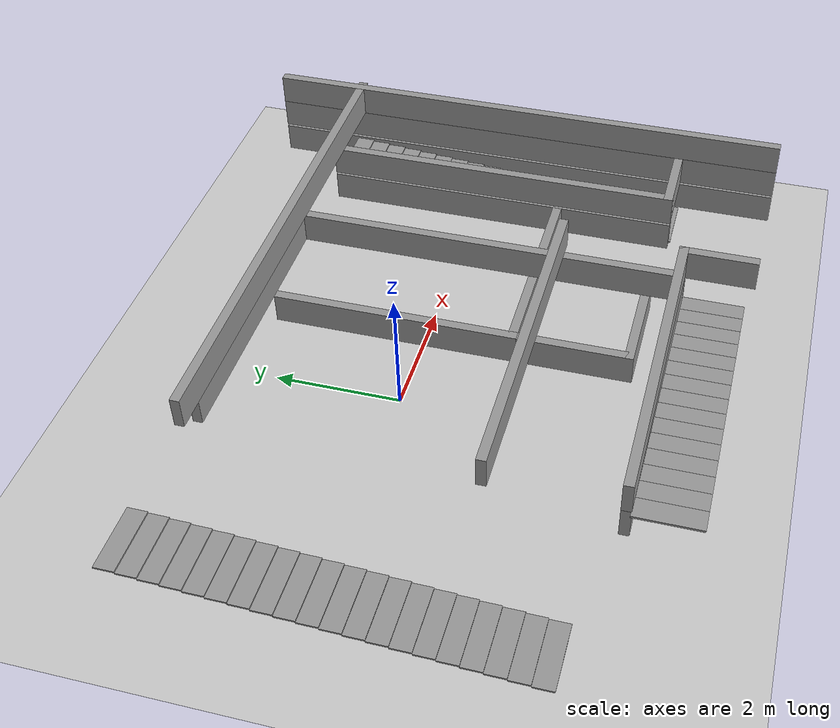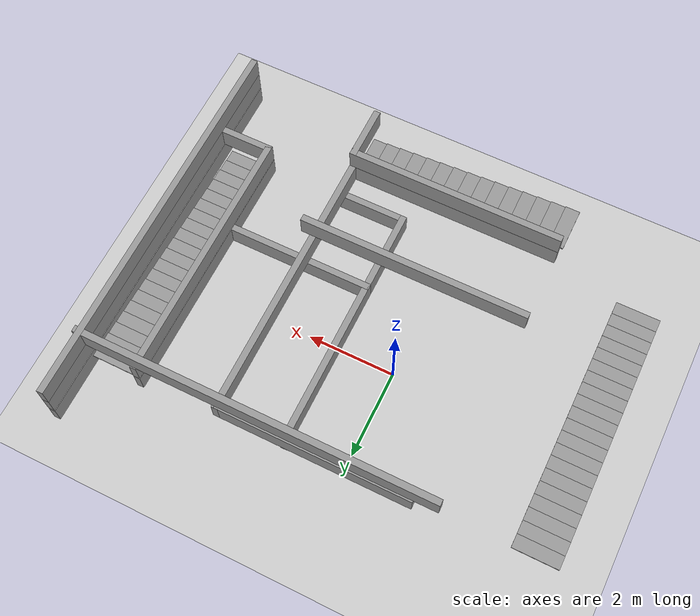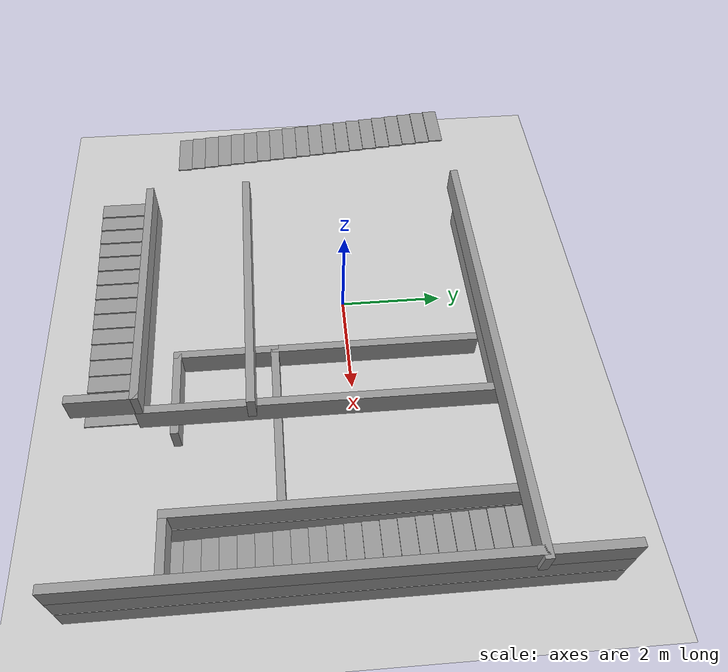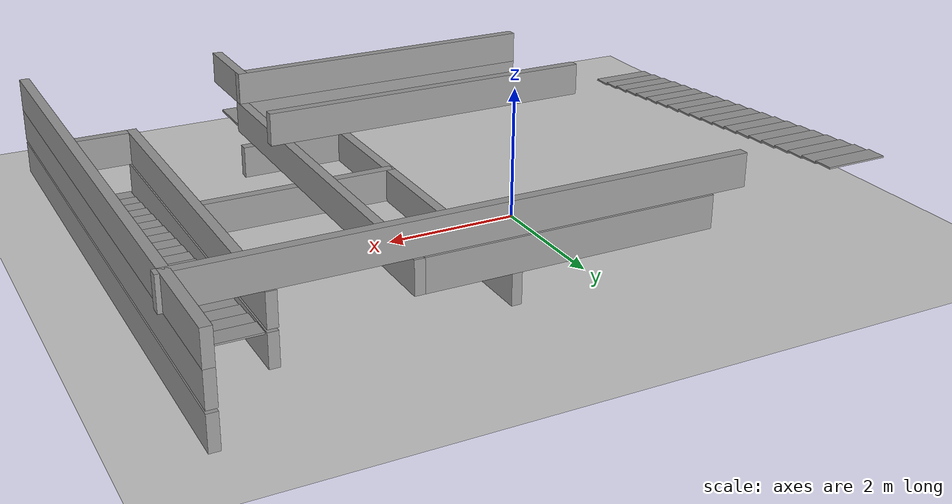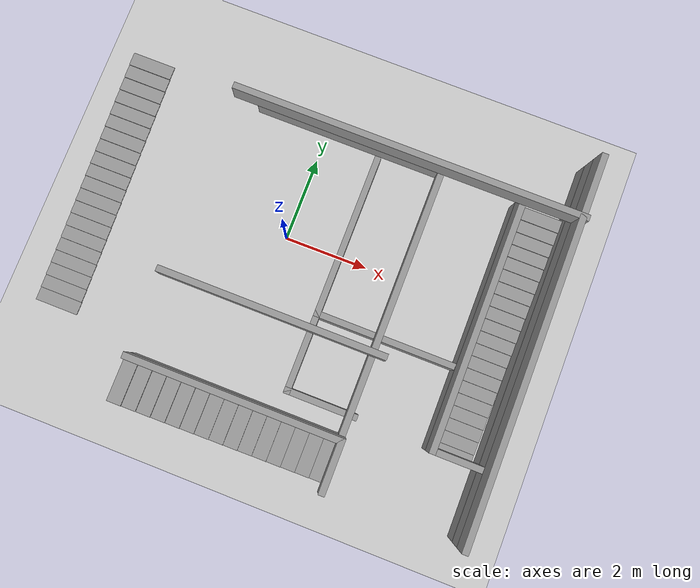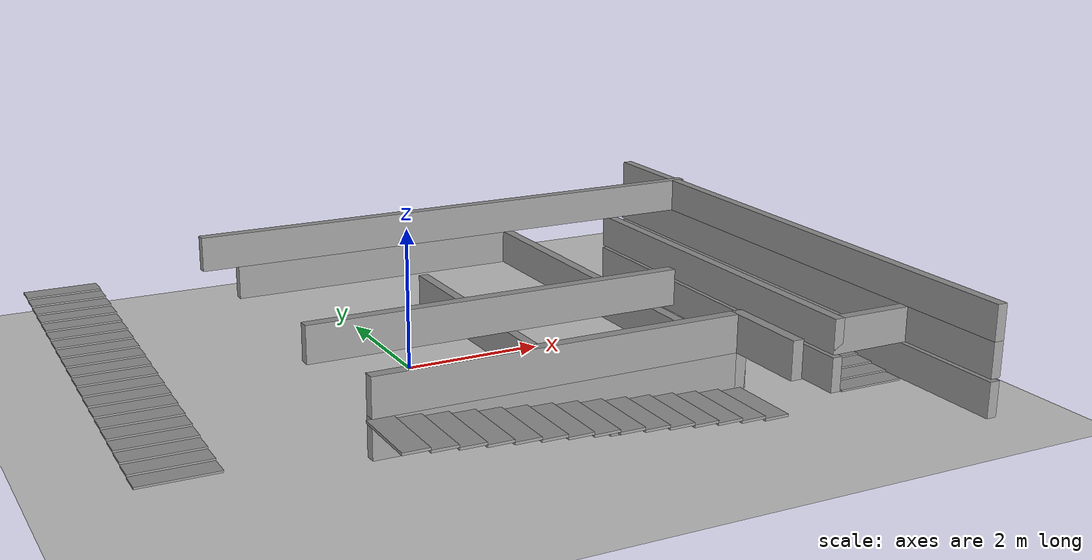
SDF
<sdf version="1.7">
 <world name="default">
  <model name="ground_plane">
   <static>1</static>
   <link name="link">
    <collision name="collision">
     <geometry><plane><normal>0 0 1</normal><size>100 100</size></plane></geometry>
     <surface>
      <contact><collide_bitmask>65535</collide_bitmask></contact>
      <friction><ode><mu>100</mu><mu2>50</mu2></ode></friction>
     </surface>
    </collision>
    <visual name="visual">
     <cast_shadows>0</cast_shadows>
     <geometry><plane><normal>0 0 1</normal><size>100 100</size></plane></geometry>
     <material>
      <script><uri>file://media/materials/scripts/gazebo.material</uri><name>Gazebo/Grey</name></script>
     </material>
    </visual>
   </link>
  </model>
  <model name="builing1">
   <pose>0.045986 -0.516202 0 0 -0 0</pose>
   <link name="Stairs_3">
    <visual name="Stairs_3_Visual_0">
     <pose>5.2679 -2.76049 0.0125 0 -0 -3.14159</pose>
     <geometry><box><size>1 0.3 0.025</size></box></geometry>
     <material>
      <script><uri>file://media/materials/scripts/gazebo.material</uri><name>Gazebo/Grey</name></script>
      <ambient>1 1 1 1</ambient>
     </material>
     <meta><layer>0</layer></meta>
    </visual>
    <collision name="Stairs_3_Collision_0">
     <geometry><box><size>1 0.3 0.025</size></box></geometry>
     <pose>5.2679 -2.76049 0.0125 0 -0 -3.14159</pose>
    </collision>
    <visual name="Stairs_3_Visual_1">
     <pose>5.2679 -2.46049 0.0375 0 -0 -3.14159</pose>
     <geometry><box><size>1 0.3 0.025</size></box></geometry>
     <material>
      <script><uri>file://media/materials/scripts/gazebo.material</uri><name>Gazebo/Grey</name></script>
      <ambient>1 1 1 1</ambient>
     </material>
     <meta><layer>0</layer></meta>
    </visual>
    <collision name="Stairs_3_Collision_1">
     <geometry><box><size>1 0.3 0.025</size></box></geometry>
     <pose>5.2679 -2.46049 0.0375 0 -0 -3.14159</pose>
    </collision>
    <visual name="Stairs_3_Visual_2">
     <pose>5.2679 -2.16049 0.0625 0 -0 -3.14159</pose>
     <geometry><box><size>1 0.3 0.025</size></box></geometry>
     <material>
      <script><uri>file://media/materials/scripts/gazebo.material</uri><name>Gazebo/Grey</name></script>
      <ambient>1 1 1 1</ambient>
     </material>
     <meta><layer>0</layer></meta>
    </visual>
    <collision name="Stairs_3_Collision_2">
     <geometry><box><size>1 0.3 0.025</size></box></geometry>
     <pose>5.2679 -2.16049 0.0625 0 -0 -3.14159</pose>
    </collision>
    <visual name="Stairs_3_Visual_3">
     <pose>5.2679 -1.86049 0.0875 0 -0 -3.14159</pose>
     <geometry><box><size>1 0.3 0.025</size></box></geometry>
     <material>
      <script><uri>file://media/materials/scripts/gazebo.material</uri><name>Gazebo/Grey</name></script>
      <ambient>1 1 1 1</ambient>
     </material>
     <meta><layer>0</layer></meta>
    </visual>
    <collision name="Stairs_3_Collision_3">
     <geometry><box><size>1 0.3 0.025</size></box></geometry>
     <pose>5.2679 -1.86049 0.0875 0 -0 -3.14159</pose>
    </collision>
    <visual name="Stairs_3_Visual_4">
     <pose>5.2679 -1.56049 0.1125 0 -0 -3.14159</pose>
     <geometry><box><size>1 0.3 0.025</size></box></geometry>
     <material>
      <script><uri>file://media/materials/scripts/gazebo.material</uri><name>Gazebo/Grey</name></script>
      <ambient>1 1 1 1</ambient>
     </material>
     <meta><layer>0</layer></meta>
    </visual>
    <collision name="Stairs_3_Collision_4">
     <geometry><box><size>1 0.3 0.025</size></box></geometry>
     <pose>5.2679 -1.56049 0.1125 0 -0 -3.14159</pose>
    </collision>
    <visual name="Stairs_3_Visual_5">
     <pose>5.2679 -1.26049 0.1375 0 -0 -3.14159</pose>
     <geometry><box><size>1 0.3 0.025</size></box></geometry>
     <material>
      <script><uri>file://media/materials/scripts/gazebo.material</uri><name>Gazebo/Grey</name></script>
      <ambient>1 1 1 1</ambient>
     </material>
     <meta><layer>0</layer></meta>
    </visual>
    <collision name="Stairs_3_Collision_5">
     <geometry><box><size>1 0.3 0.025</size></box></geometry>
     <pose>5.2679 -1.26049 0.1375 0 -0 -3.14159</pose>
    </collision>
    <visual name="Stairs_3_Visual_6">
     <pose>5.2679 -0.960492 0.1625 0 -0 -3.14159</pose>
     <geometry><box><size>1 0.3 0.025</size></box></geometry>
     <material>
      <script><uri>file://media/materials/scripts/gazebo.material</uri><name>Gazebo/Grey</name></script>
      <ambient>1 1 1 1</ambient>
     </material>
     <meta><layer>0</layer></meta>
    </visual>
    <collision name="Stairs_3_Collision_6">
     <geometry><box><size>1 0.3 0.025</size></box></geometry>
     <pose>5.2679 -0.960492 0.1625 0 -0 -3.14159</pose>
    </collision>
    <visual name="Stairs_3_Visual_7">
     <pose>5.2679 -0.660492 0.1875 0 -0 -3.14159</pose>
     <geometry><box><size>1 0.3 0.025</size></box></geometry>
     <material>
      <script><uri>file://media/materials/scripts/gazebo.material</uri><name>Gazebo/Grey</name></script>
      <ambient>1 1 1 1</ambient>
     </material>
     <meta><layer>0</layer></meta>
    </visual>
    <collision name="Stairs_3_Collision_7">
     <geometry><box><size>1 0.3 0.025</size></box></geometry>
     <pose>5.2679 -0.660492 0.1875 0 -0 -3.14159</pose>
    </collision>
    <visual name="Stairs_3_Visual_8">
     <pose>5.2679 -0.360492 0.2125 0 -0 -3.14159</pose>
     <geometry><box><size>1 0.3 0.025</size></box></geometry>
     <material>
      <script><uri>file://media/materials/scripts/gazebo.material</uri><name>Gazebo/Grey</name></script>
      <ambient>1 1 1 1</ambient>
     </material>
     <meta><layer>0</layer></meta>
    </visual>
    <collision name="Stairs_3_Collision_8">
     <geometry><box><size>1 0.3 0.025</size></box></geometry>
     <pose>5.2679 -0.360492 0.2125 0 -0 -3.14159</pose>
    </collision>
    <visual name="Stairs_3_Visual_9">
     <pose>5.2679 -0.060492 0.2375 0 -0 -3.14159</pose>
     <geometry><box><size>1 0.3 0.025</size></box></geometry>
     <material>
      <script><uri>file://media/materials/scripts/gazebo.material</uri><name>Gazebo/Grey</name></script>
      <ambient>1 1 1 1</ambient>
     </material>
     <meta><layer>0</layer></meta>
    </visual>
    <collision name="Stairs_3_Collision_9">
     <geometry><box><size>1 0.3 0.025</size></box></geometry>
     <pose>5.2679 -0.060492 0.2375 0 -0 -3.14159</pose>
    </collision>
    <visual name="Stairs_3_Visual_10">
     <pose>5.2679 0.239508 0.2625 0 -0 -3.14159</pose>
     <geometry><box><size>1 0.3 0.025</size></box></geometry>
     <material>
      <script><uri>file://media/materials/scripts/gazebo.material</uri><name>Gazebo/Grey</name></script>
      <ambient>1 1 1 1</ambient>
     </material>
     <meta><layer>0</layer></meta>
    </visual>
    <collision name="Stairs_3_Collision_10">
     <geometry><box><size>1 0.3 0.025</size></box></geometry>
     <pose>5.2679 0.239508 0.2625 0 -0 -3.14159</pose>
    </collision>
    <visual name="Stairs_3_Visual_11">
     <pose>5.2679 0.539508 0.2875 0 -0 -3.14159</pose>
     <geometry><box><size>1 0.3 0.025</size></box></geometry>
     <material>
      <script><uri>file://media/materials/scripts/gazebo.material</uri><name>Gazebo/Grey</name></script>
      <ambient>1 1 1 1</ambient>
     </material>
     <meta><layer>0</layer></meta>
    </visual>
    <collision name="Stairs_3_Collision_11">
     <geometry><box><size>1 0.3 0.025</size></box></geometry>
     <pose>5.2679 0.539508 0.2875 0 -0 -3.14159</pose>
    </collision>
    <visual name="Stairs_3_Visual_12">
     <pose>5.2679 0.839508 0.3125 0 -0 -3.14159</pose>
     <geometry><box><size>1 0.3 0.025</size></box></geometry>
     <material>
      <script><uri>file://media/materials/scripts/gazebo.material</uri><name>Gazebo/Grey</name></script>
      <ambient>1 1 1 1</ambient>
     </material>
     <meta><layer>0</layer></meta>
    </visual>
    <collision name="Stairs_3_Collision_12">
     <geometry><box><size>1 0.3 0.025</size></box></geometry>
     <pose>5.2679 0.839508 0.3125 0 -0 -3.14159</pose>
    </collision>
    <visual name="Stairs_3_Visual_13">
     <pose>5.2679 1.13951 0.3375 0 -0 -3.14159</pose>
     <geometry><box><size>1 0.3 0.025</size></box></geometry>
     <material>
      <script><uri>file://media/materials/scripts/gazebo.material</uri><name>Gazebo/Grey</name></script>
      <ambient>1 1 1 1</ambient>
     </material>
     <meta><layer>0</layer></meta>
    </visual>
    <collision name="Stairs_3_Collision_13">
     <geometry><box><size>1 0.3 0.025</size></box></geometry>
     <pose>5.2679 1.13951 0.3375 0 -0 -3.14159</pose>
    </collision>
    <visual name="Stairs_3_Visual_14">
     <pose>5.2679 1.43951 0.3625 0 -0 -3.14159</pose>
     <geometry><box><size>1 0.3 0.025</size></box></geometry>
     <material>
      <script><uri>file://media/materials/scripts/gazebo.material</uri><name>Gazebo/Grey</name></script>
      <ambient>1 1 1 1</ambient>
     </material>
     <meta><layer>0</layer></meta>
    </visual>
    <collision name="Stairs_3_Collision_14">
     <geometry><box><size>1 0.3 0.025</size></box></geometry>
     <pose>5.2679 1.43951 0.3625 0 -0 -3.14159</pose>
    </collision>
    <visual name="Stairs_3_Visual_15">
     <pose>5.2679 1.73951 0.3875 0 -0 -3.14159</pose>
     <geometry><box><size>1 0.3 0.025</size></box></geometry>
     <material>
      <script><uri>file://media/materials/scripts/gazebo.material</uri><name>Gazebo/Grey</name></script>
      <ambient>1 1 1 1</ambient>
     </material>
     <meta><layer>0</layer></meta>
    </visual>
    <collision name="Stairs_3_Collision_15">
     <geometry><box><size>1 0.3 0.025</size></box></geometry>
     <pose>5.2679 1.73951 0.3875 0 -0 -3.14159</pose>
    </collision>
    <visual name="Stairs_3_Visual_16">
     <pose>5.2679 2.03951 0.4125 0 -0 -3.14159</pose>
     <geometry><box><size>1 0.3 0.025</size></box></geometry>
     <material>
      <script><uri>file://media/materials/scripts/gazebo.material</uri><name>Gazebo/Grey</name></script>
      <ambient>1 1 1 1</ambient>
     </material>
     <meta><layer>0</layer></meta>
    </visual>
    <collision name="Stairs_3_Collision_16">
     <geometry><box><size>1 0.3 0.025</size></box></geometry>
     <pose>5.2679 2.03951 0.4125 0 -0 -3.14159</pose>
    </collision>
    <visual name="Stairs_3_Visual_17">
     <pose>5.2679 2.33951 0.4375 0 -0 -3.14159</pose>
     <geometry><box><size>1 0.3 0.025</size></box></geometry>
     <material>
      <script><uri>file://media/materials/scripts/gazebo.material</uri><name>Gazebo/Grey</name></script>
      <ambient>1 1 1 1</ambient>
     </material>
     <meta><layer>0</layer></meta>
    </visual>
    <collision name="Stairs_3_Collision_17">
     <geometry><box><size>1 0.3 0.025</size></box></geometry>
     <pose>5.2679 2.33951 0.4375 0 -0 -3.14159</pose>
    </collision>
    <visual name="Stairs_3_Visual_18">
     <pose>5.2679 2.63951 0.4625 0 -0 -3.14159</pose>
     <geometry><box><size>1 0.3 0.025</size></box></geometry>
     <material>
      <script><uri>file://media/materials/scripts/gazebo.material</uri><name>Gazebo/Grey</name></script>
      <ambient>1 1 1 1</ambient>
     </material>
     <meta><layer>0</layer></meta>
    </visual>
    <collision name="Stairs_3_Collision_18">
     <geometry><box><size>1 0.3 0.025</size></box></geometry>
     <pose>5.2679 2.63951 0.4625 0 -0 -3.14159</pose>
    </collision>
    <visual name="Stairs_3_Visual_19">
     <pose>5.2679 2.93951 0.4875 0 -0 -3.14159</pose>
     <geometry><box><size>1 0.3 0.025</size></box></geometry>
     <material>
      <script><uri>file://media/materials/scripts/gazebo.material</uri><name>Gazebo/Grey</name></script>
      <ambient>1 1 1 1</ambient>
     </material>
     <meta><layer>0</layer></meta>
    </visual>
    <collision name="Stairs_3_Collision_19">
     <geometry><box><size>1 0.3 0.025</size></box></geometry>
     <pose>5.2679 2.93951 0.4875 0 -0 -3.14159</pose>
    </collision>
   </link>
   <link name="Stairs_5">
    <visual name="Stairs_5_Visual_0">
     <pose>-4.23756 -2.76894 0.5525 0 -0 -3.14159</pose>
     <geometry><box><size>1 0.3 0.025</size></box></geometry>
     <material>
      <script><uri>file://media/materials/scripts/gazebo.material</uri><name>Gazebo/Grey</name></script>
      <ambient>1 1 1 1</ambient>
     </material>
     <meta><layer>1</layer></meta>
    </visual>
    <collision name="Stairs_5_Collision_0">
     <geometry><box><size>1 0.3 0.025</size></box></geometry>
     <pose>-4.23756 -2.76894 0.5525 0 -0 -3.14159</pose>
    </collision>
    <visual name="Stairs_5_Visual_1">
     <pose>-4.23756 -2.46894 0.5775 0 -0 -3.14159</pose>
     <geometry><box><size>1 0.3 0.025</size></box></geometry>
     <material>
      <script><uri>file://media/materials/scripts/gazebo.material</uri><name>Gazebo/Grey</name></script>
      <ambient>1 1 1 1</ambient>
     </material>
     <meta><layer>1</layer></meta>
    </visual>
    <collision name="Stairs_5_Collision_1">
     <geometry><box><size>1 0.3 0.025</size></box></geometry>
     <pose>-4.23756 -2.46894 0.5775 0 -0 -3.14159</pose>
    </collision>
    <visual name="Stairs_5_Visual_2">
     <pose>-4.23756 -2.16894 0.6025 0 -0 -3.14159</pose>
     <geometry><box><size>1 0.3 0.025</size></box></geometry>
     <material>
      <script><uri>file://media/materials/scripts/gazebo.material</uri><name>Gazebo/Grey</name></script>
      <ambient>1 1 1 1</ambient>
     </material>
     <meta><layer>1</layer></meta>
    </visual>
    <collision name="Stairs_5_Collision_2">
     <geometry><box><size>1 0.3 0.025</size></box></geometry>
     <pose>-4.23756 -2.16894 0.6025 0 -0 -3.14159</pose>
    </collision>
    <visual name="Stairs_5_Visual_3">
     <pose>-4.23756 -1.86894 0.6275 0 -0 -3.14159</pose>
     <geometry><box><size>1 0.3 0.025</size></box></geometry>
     <material>
      <script><uri>file://media/materials/scripts/gazebo.material</uri><name>Gazebo/Grey</name></script>
      <ambient>1 1 1 1</ambient>
     </material>
     <meta><layer>1</layer></meta>
    </visual>
    <collision name="Stairs_5_Collision_3">
     <geometry><box><size>1 0.3 0.025</size></box></geometry>
     <pose>-4.23756 -1.86894 0.6275 0 -0 -3.14159</pose>
    </collision>
    <visual name="Stairs_5_Visual_4">
     <pose>-4.23756 -1.56894 0.6525 0 -0 -3.14159</pose>
     <geometry><box><size>1 0.3 0.025</size></box></geometry>
     <material>
      <script><uri>file://media/materials/scripts/gazebo.material</uri><name>Gazebo/Grey</name></script>
      <ambient>1 1 1 1</ambient>
     </material>
     <meta><layer>1</layer></meta>
    </visual>
    <collision name="Stairs_5_Collision_4">
     <geometry><box><size>1 0.3 0.025</size></box></geometry>
     <pose>-4.23756 -1.56894 0.6525 0 -0 -3.14159</pose>
    </collision>
    <visual name="Stairs_5_Visual_5">
     <pose>-4.23756 -1.26894 0.6775 0 -0 -3.14159</pose>
     <geometry><box><size>1 0.3 0.025</size></box></geometry>
     <material>
      <script><uri>file://media/materials/scripts/gazebo.material</uri><name>Gazebo/Grey</name></script>
      <ambient>1 1 1 1</ambient>
     </material>
     <meta><layer>1</layer></meta>
    </visual>
    <collision name="Stairs_5_Collision_5">
     <geometry><box><size>1 0.3 0.025</size></box></geometry>
     <pose>-4.23756 -1.26894 0.6775 0 -0 -3.14159</pose>
    </collision>
    <visual name="Stairs_5_Visual_6">
     <pose>-4.23756 -0.96894 0.7025 0 -0 -3.14159</pose>
     <geometry><box><size>1 0.3 0.025</size></box></geometry>
     <material>
      <script><uri>file://media/materials/scripts/gazebo.material</uri><name>Gazebo/Grey</name></script>
      <ambient>1 1 1 1</ambient>
     </material>
     <meta><layer>1</layer></meta>
    </visual>
    <collision name="Stairs_5_Collision_6">
     <geometry><box><size>1 0.3 0.025</size></box></geometry>
     <pose>-4.23756 -0.96894 0.7025 0 -0 -3.14159</pose>
    </collision>
    <visual name="Stairs_5_Visual_7">
     <pose>-4.23756 -0.66894 0.7275 0 -0 -3.14159</pose>
     <geometry><box><size>1 0.3 0.025</size></box></geometry>
     <material>
      <script><uri>file://media/materials/scripts/gazebo.material</uri><name>Gazebo/Grey</name></script>
      <ambient>1 1 1 1</ambient>
     </material>
     <meta><layer>1</layer></meta>
    </visual>
    <collision name="Stairs_5_Collision_7">
     <geometry><box><size>1 0.3 0.025</size></box></geometry>
     <pose>-4.23756 -0.66894 0.7275 0 -0 -3.14159</pose>
    </collision>
    <visual name="Stairs_5_Visual_8">
     <pose>-4.23756 -0.36894 0.7525 0 -0 -3.14159</pose>
     <geometry><box><size>1 0.3 0.025</size></box></geometry>
     <material>
      <script><uri>file://media/materials/scripts/gazebo.material</uri><name>Gazebo/Grey</name></script>
      <ambient>1 1 1 1</ambient>
     </material>
     <meta><layer>1</layer></meta>
    </visual>
    <collision name="Stairs_5_Collision_8">
     <geometry><box><size>1 0.3 0.025</size></box></geometry>
     <pose>-4.23756 -0.36894 0.7525 0 -0 -3.14159</pose>
    </collision>
    <visual name="Stairs_5_Visual_9">
     <pose>-4.23756 -0.06894 0.7775 0 -0 -3.14159</pose>
     <geometry><box><size>1 0.3 0.025</size></box></geometry>
     <material>
      <script><uri>file://media/materials/scripts/gazebo.material</uri><name>Gazebo/Grey</name></script>
      <ambient>1 1 1 1</ambient>
     </material>
     <meta><layer>1</layer></meta>
    </visual>
    <collision name="Stairs_5_Collision_9">
     <geometry><box><size>1 0.3 0.025</size></box></geometry>
     <pose>-4.23756 -0.06894 0.7775 0 -0 -3.14159</pose>
    </collision>
    <visual name="Stairs_5_Visual_10">
     <pose>-4.23756 0.23106 0.8025 0 -0 -3.14159</pose>
     <geometry><box><size>1 0.3 0.025</size></box></geometry>
     <material>
      <script><uri>file://media/materials/scripts/gazebo.material</uri><name>Gazebo/Grey</name></script>
      <ambient>1 1 1 1</ambient>
     </material>
     <meta><layer>1</layer></meta>
    </visual>
    <collision name="Stairs_5_Collision_10">
     <geometry><box><size>1 0.3 0.025</size></box></geometry>
     <pose>-4.23756 0.23106 0.8025 0 -0 -3.14159</pose>
    </collision>
    <visual name="Stairs_5_Visual_11">
     <pose>-4.23756 0.53106 0.8275 0 -0 -3.14159</pose>
     <geometry><box><size>1 0.3 0.025</size></box></geometry>
     <material>
      <script><uri>file://media/materials/scripts/gazebo.material</uri><name>Gazebo/Grey</name></script>
      <ambient>1 1 1 1</ambient>
     </material>
     <meta><layer>1</layer></meta>
    </visual>
    <collision name="Stairs_5_Collision_11">
     <geometry><box><size>1 0.3 0.025</size></box></geometry>
     <pose>-4.23756 0.53106 0.8275 0 -0 -3.14159</pose>
    </collision>
    <visual name="Stairs_5_Visual_12">
     <pose>-4.23756 0.83106 0.8525 0 -0 -3.14159</pose>
     <geometry><box><size>1 0.3 0.025</size></box></geometry>
     <material>
      <script><uri>file://media/materials/scripts/gazebo.material</uri><name>Gazebo/Grey</name></script>
      <ambient>1 1 1 1</ambient>
     </material>
     <meta><layer>1</layer></meta>
    </visual>
    <collision name="Stairs_5_Collision_12">
     <geometry><box><size>1 0.3 0.025</size></box></geometry>
     <pose>-4.23756 0.83106 0.8525 0 -0 -3.14159</pose>
    </collision>
    <visual name="Stairs_5_Visual_13">
     <pose>-4.23756 1.13106 0.8775 0 -0 -3.14159</pose>
     <geometry><box><size>1 0.3 0.025</size></box></geometry>
     <material>
      <script><uri>file://media/materials/scripts/gazebo.material</uri><name>Gazebo/Grey</name></script>
      <ambient>1 1 1 1</ambient>
     </material>
     <meta><layer>1</layer></meta>
    </visual>
    <collision name="Stairs_5_Collision_13">
     <geometry><box><size>1 0.3 0.025</size></box></geometry>
     <pose>-4.23756 1.13106 0.8775 0 -0 -3.14159</pose>
    </collision>
    <visual name="Stairs_5_Visual_14">
     <pose>-4.23756 1.43106 0.9025 0 -0 -3.14159</pose>
     <geometry><box><size>1 0.3 0.025</size></box></geometry>
     <material>
      <script><uri>file://media/materials/scripts/gazebo.material</uri><name>Gazebo/Grey</name></script>
      <ambient>1 1 1 1</ambient>
     </material>
     <meta><layer>1</layer></meta>
    </visual>
    <collision name="Stairs_5_Collision_14">
     <geometry><box><size>1 0.3 0.025</size></box></geometry>
     <pose>-4.23756 1.43106 0.9025 0 -0 -3.14159</pose>
    </collision>
    <visual name="Stairs_5_Visual_15">
     <pose>-4.23756 1.73106 0.9275 0 -0 -3.14159</pose>
     <geometry><box><size>1 0.3 0.025</size></box></geometry>
     <material>
      <script><uri>file://media/materials/scripts/gazebo.material</uri><name>Gazebo/Grey</name></script>
      <ambient>1 1 1 1</ambient>
     </material>
     <meta><layer>1</layer></meta>
    </visual>
    <collision name="Stairs_5_Collision_15">
     <geometry><box><size>1 0.3 0.025</size></box></geometry>
     <pose>-4.23756 1.73106 0.9275 0 -0 -3.14159</pose>
    </collision>
    <visual name="Stairs_5_Visual_16">
     <pose>-4.23756 2.03106 0.9525 0 -0 -3.14159</pose>
     <geometry><box><size>1 0.3 0.025</size></box></geometry>
     <material>
      <script><uri>file://media/materials/scripts/gazebo.material</uri><name>Gazebo/Grey</name></script>
      <ambient>1 1 1 1</ambient>
     </material>
     <meta><layer>1</layer></meta>
    </visual>
    <collision name="Stairs_5_Collision_16">
     <geometry><box><size>1 0.3 0.025</size></box></geometry>
     <pose>-4.23756 2.03106 0.9525 0 -0 -3.14159</pose>
    </collision>
    <visual name="Stairs_5_Visual_17">
     <pose>-4.23756 2.33106 0.9775 0 -0 -3.14159</pose>
     <geometry><box><size>1 0.3 0.025</size></box></geometry>
     <material>
      <script><uri>file://media/materials/scripts/gazebo.material</uri><name>Gazebo/Grey</name></script>
      <ambient>1 1 1 1</ambient>
     </material>
     <meta><layer>1</layer></meta>
    </visual>
    <collision name="Stairs_5_Collision_17">
     <geometry><box><size>1 0.3 0.025</size></box></geometry>
     <pose>-4.23756 2.33106 0.9775 0 -0 -3.14159</pose>
    </collision>
    <visual name="Stairs_5_Visual_18">
     <pose>-4.23756 2.63106 1.0025 0 -0 -3.14159</pose>
     <geometry><box><size>1 0.3 0.025</size></box></geometry>
     <material>
      <script><uri>file://media/materials/scripts/gazebo.material</uri><name>Gazebo/Grey</name></script>
      <ambient>1 1 1 1</ambient>
     </material>
     <meta><layer>1</layer></meta>
    </visual>
    <collision name="Stairs_5_Collision_18">
     <geometry><box><size>1 0.3 0.025</size></box></geometry>
     <pose>-4.23756 2.63106 1.0025 0 -0 -3.14159</pose>
    </collision>
    <visual name="Stairs_5_Visual_19">
     <pose>-4.23756 2.93106 1.0275 0 -0 -3.14159</pose>
     <geometry><box><size>1 0.3 0.025</size></box></geometry>
     <material>
      <script><uri>file://media/materials/scripts/gazebo.material</uri><name>Gazebo/Grey</name></script>
      <ambient>1 1 1 1</ambient>
     </material>
     <meta><layer>1</layer></meta>
    </visual>
    <collision name="Stairs_5_Collision_19">
     <geometry><box><size>1 0.3 0.025</size></box></geometry>
     <pose>-4.23756 2.93106 1.0275 0 -0 -3.14159</pose>
    </collision>
   </link>
   <link name="Stairs_6">
    <visual name="Stairs_6_Visual_0">
     <pose>2.59337 -3.85775 0.556667 0 -0 -1.5708</pose>
     <geometry><box><size>1 0.333333 0.033333</size></box></geometry>
     <material>
      <script><uri>file://media/materials/scripts/gazebo.material</uri><name>Gazebo/Grey</name></script>
      <ambient>1 1 1 1</ambient>
     </material>
     <meta><layer>1</layer></meta>
    </visual>
    <collision name="Stairs_6_Collision_0">
     <geometry><box><size>1 0.333333 0.033333</size></box></geometry>
     <pose>2.59337 -3.85775 0.556667 0 -0 -1.5708</pose>
    </collision>
    <visual name="Stairs_6_Visual_1">
     <pose>2.26003 -3.85775 0.59 0 -0 -1.5708</pose>
     <geometry><box><size>1 0.333333 0.033333</size></box></geometry>
     <material>
      <script><uri>file://media/materials/scripts/gazebo.material</uri><name>Gazebo/Grey</name></script>
      <ambient>1 1 1 1</ambient>
     </material>
     <meta><layer>1</layer></meta>
    </visual>
    <collision name="Stairs_6_Collision_1">
     <geometry><box><size>1 0.333333 0.033333</size></box></geometry>
     <pose>2.26003 -3.85775 0.59 0 -0 -1.5708</pose>
    </collision>
    <visual name="Stairs_6_Visual_2">
     <pose>1.9267 -3.85775 0.623333 0 -0 -1.5708</pose>
     <geometry><box><size>1 0.333333 0.033333</size></box></geometry>
     <material>
      <script><uri>file://media/materials/scripts/gazebo.material</uri><name>Gazebo/Grey</name></script>
      <ambient>1 1 1 1</ambient>
     </material>
     <meta><layer>1</layer></meta>
    </visual>
    <collision name="Stairs_6_Collision_2">
     <geometry><box><size>1 0.333333 0.033333</size></box></geometry>
     <pose>1.9267 -3.85775 0.623333 0 -0 -1.5708</pose>
    </collision>
    <visual name="Stairs_6_Visual_3">
     <pose>1.59336 -3.85775 0.656667 0 -0 -1.5708</pose>
     <geometry><box><size>1 0.333333 0.033333</size></box></geometry>
     <material>
      <script><uri>file://media/materials/scripts/gazebo.material</uri><name>Gazebo/Grey</name></script>
      <ambient>1 1 1 1</ambient>
     </material>
     <meta><layer>1</layer></meta>
    </visual>
    <collision name="Stairs_6_Collision_3">
     <geometry><box><size>1 0.333333 0.033333</size></box></geometry>
     <pose>1.59336 -3.85775 0.656667 0 -0 -1.5708</pose>
    </collision>
    <visual name="Stairs_6_Visual_4">
     <pose>1.26003 -3.85775 0.69 0 -0 -1.5708</pose>
     <geometry><box><size>1 0.333333 0.033333</size></box></geometry>
     <material>
      <script><uri>file://media/materials/scripts/gazebo.material</uri><name>Gazebo/Grey</name></script>
      <ambient>1 1 1 1</ambient>
     </material>
     <meta><layer>1</layer></meta>
    </visual>
    <collision name="Stairs_6_Collision_4">
     <geometry><box><size>1 0.333333 0.033333</size></box></geometry>
     <pose>1.26003 -3.85775 0.69 0 -0 -1.5708</pose>
    </collision>
    <visual name="Stairs_6_Visual_5">
     <pose>0.926699 -3.85775 0.723333 0 -0 -1.5708</pose>
     <geometry><box><size>1 0.333333 0.033333</size></box></geometry>
     <material>
      <script><uri>file://media/materials/scripts/gazebo.material</uri><name>Gazebo/Grey</name></script>
      <ambient>1 1 1 1</ambient>
     </material>
     <meta><layer>1</layer></meta>
    </visual>
    <collision name="Stairs_6_Collision_5">
     <geometry><box><size>1 0.333333 0.033333</size></box></geometry>
     <pose>0.926699 -3.85775 0.723333 0 -0 -1.5708</pose>
    </collision>
    <visual name="Stairs_6_Visual_6">
     <pose>0.593365 -3.85775 0.756667 0 -0 -1.5708</pose>
     <geometry><box><size>1 0.333333 0.033333</size></box></geometry>
     <material>
      <script><uri>file://media/materials/scripts/gazebo.material</uri><name>Gazebo/Grey</name></script>
      <ambient>1 1 1 1</ambient>
     </material>
     <meta><layer>1</layer></meta>
    </visual>
    <collision name="Stairs_6_Collision_6">
     <geometry><box><size>1 0.333333 0.033333</size></box></geometry>
     <pose>0.593365 -3.85775 0.756667 0 -0 -1.5708</pose>
    </collision>
    <visual name="Stairs_6_Visual_7">
     <pose>0.260032 -3.85775 0.79 0 -0 -1.5708</pose>
     <geometry><box><size>1 0.333333 0.033333</size></box></geometry>
     <material>
      <script><uri>file://media/materials/scripts/gazebo.material</uri><name>Gazebo/Grey</name></script>
      <ambient>1 1 1 1</ambient>
     </material>
     <meta><layer>1</layer></meta>
    </visual>
    <collision name="Stairs_6_Collision_7">
     <geometry><box><size>1 0.333333 0.033333</size></box></geometry>
     <pose>0.260032 -3.85775 0.79 0 -0 -1.5708</pose>
    </collision>
    <visual name="Stairs_6_Visual_8">
     <pose>-0.073301 -3.85775 0.823333 0 -0 -1.5708</pose>
     <geometry><box><size>1 0.333333 0.033333</size></box></geometry>
     <material>
      <script><uri>file://media/materials/scripts/gazebo.material</uri><name>Gazebo/Grey</name></script>
      <ambient>1 1 1 1</ambient>
     </material>
     <meta><layer>1</layer></meta>
    </visual>
    <collision name="Stairs_6_Collision_8">
     <geometry><box><size>1 0.333333 0.033333</size></box></geometry>
     <pose>-0.073301 -3.85775 0.823333 0 -0 -1.5708</pose>
    </collision>
    <visual name="Stairs_6_Visual_9">
     <pose>-0.406635 -3.85775 0.856667 0 -0 -1.5708</pose>
     <geometry><box><size>1 0.333333 0.033333</size></box></geometry>
     <material>
      <script><uri>file://media/materials/scripts/gazebo.material</uri><name>Gazebo/Grey</name></script>
      <ambient>1 1 1 1</ambient>
     </material>
     <meta><layer>1</layer></meta>
    </visual>
    <collision name="Stairs_6_Collision_9">
     <geometry><box><size>1 0.333333 0.033333</size></box></geometry>
     <pose>-0.406635 -3.85775 0.856667 0 -0 -1.5708</pose>
    </collision>
    <visual name="Stairs_6_Visual_10">
     <pose>-0.739968 -3.85775 0.89 0 -0 -1.5708</pose>
     <geometry><box><size>1 0.333333 0.033333</size></box></geometry>
     <material>
      <script><uri>file://media/materials/scripts/gazebo.material</uri><name>Gazebo/Grey</name></script>
      <ambient>1 1 1 1</ambient>
     </material>
     <meta><layer>1</layer></meta>
    </visual>
    <collision name="Stairs_6_Collision_10">
     <geometry><box><size>1 0.333333 0.033333</size></box></geometry>
     <pose>-0.739968 -3.85775 0.89 0 -0 -1.5708</pose>
    </collision>
    <visual name="Stairs_6_Visual_11">
     <pose>-1.0733 -3.85775 0.923333 0 -0 -1.5708</pose>
     <geometry><box><size>1 0.333333 0.033333</size></box></geometry>
     <material>
      <script><uri>file://media/materials/scripts/gazebo.material</uri><name>Gazebo/Grey</name></script>
      <ambient>1 1 1 1</ambient>
     </material>
     <meta><layer>1</layer></meta>
    </visual>
    <collision name="Stairs_6_Collision_11">
     <geometry><box><size>1 0.333333 0.033333</size></box></geometry>
     <pose>-1.0733 -3.85775 0.923333 0 -0 -1.5708</pose>
    </collision>
    <visual name="Stairs_6_Visual_12">
     <pose>-1.40664 -3.85775 0.956667 0 -0 -1.5708</pose>
     <geometry><box><size>1 0.333333 0.033333</size></box></geometry>
     <material>
      <script><uri>file://media/materials/scripts/gazebo.material</uri><name>Gazebo/Grey</name></script>
      <ambient>1 1 1 1</ambient>
     </material>
     <meta><layer>1</layer></meta>
    </visual>
    <collision name="Stairs_6_Collision_12">
     <geometry><box><size>1 0.333333 0.033333</size></box></geometry>
     <pose>-1.40664 -3.85775 0.956667 0 -0 -1.5708</pose>
    </collision>
    <visual name="Stairs_6_Visual_13">
     <pose>-1.73997 -3.85775 0.99 0 -0 -1.5708</pose>
     <geometry><box><size>1 0.333333 0.033333</size></box></geometry>
     <material>
      <script><uri>file://media/materials/scripts/gazebo.material</uri><name>Gazebo/Grey</name></script>
      <ambient>1 1 1 1</ambient>
     </material>
     <meta><layer>1</layer></meta>
    </visual>
    <collision name="Stairs_6_Collision_13">
     <geometry><box><size>1 0.333333 0.033333</size></box></geometry>
     <pose>-1.73997 -3.85775 0.99 0 -0 -1.5708</pose>
    </collision>
    <visual name="Stairs_6_Visual_14">
     <pose>-2.0733 -3.85775 1.02333 0 -0 -1.5708</pose>
     <geometry><box><size>1 0.333333 0.033333</size></box></geometry>
     <material>
      <script><uri>file://media/materials/scripts/gazebo.material</uri><name>Gazebo/Grey</name></script>
      <ambient>1 1 1 1</ambient>
     </material>
     <meta><layer>1</layer></meta>
    </visual>
    <collision name="Stairs_6_Collision_14">
     <geometry><box><size>1 0.333333 0.033333</size></box></geometry>
     <pose>-2.0733 -3.85775 1.02333 0 -0 -1.5708</pose>
    </collision>
   </link>
   <link name="Wall_16">
    <collision name="Wall_16_Collision">
     <geometry><box><size>4 0.15 0.5</size></box></geometry>
     <pose>0 0 0.25 0 -0 0</pose>
    </collision>
    <visual name="Wall_16_Visual">
     <pose>0 0 0.25 0 -0 0</pose>
     <geometry><box><size>4 0.15 0.5</size></box></geometry>
     <material>
      <script><uri>file://media/materials/scripts/gazebo.material</uri><name>Gazebo/Grey</name></script>
      <ambient>1 1 1 1</ambient>
     </material>
     <meta><layer>0</layer></meta>
    </visual>
    <pose>1.29304 1.002 0 0 -0 -1.5708</pose>
   </link>
   <link name="Wall_17">
    <collision name="Wall_17_Collision">
     <geometry><box><size>3.5 0.15 0.5</size></box></geometry>
     <pose>0 0 0.25 0 -0 0</pose>
    </collision>
    <visual name="Wall_17_Visual">
     <pose>0 0 0.25 0 -0 0</pose>
     <geometry><box><size>3.5 0.15 0.5</size></box></geometry>
     <material>
      <script><uri>file://media/materials/scripts/gazebo.material</uri><name>Gazebo/Grey</name></script>
      <ambient>1 1 1 1</ambient>
     </material>
     <meta><layer>0</layer></meta>
    </visual>
    <pose>2.96804 -0.923 0 0 -0 0</pose>
   </link>
   <link name="Wall_19">
    <collision name="Wall_19_Collision">
     <geometry><box><size>2 0.15 0.5</size></box></geometry>
     <pose>0 0 0.25 0 -0 0</pose>
    </collision>
    <visual name="Wall_19_Visual">
     <pose>0 0 0.25 0 -0 0</pose>
     <geometry><box><size>2 0.15 0.5</size></box></geometry>
     <material>
      <script><uri>file://media/materials/scripts/gazebo.material</uri><name>Gazebo/Grey</name></script>
      <ambient>1 1 1 1</ambient>
     </material>
     <meta><layer>0</layer></meta>
    </visual>
    <pose>1.29304 -1.848 0 0 -0 -1.5708</pose>
   </link>
   <link name="Wall_20">
    <collision name="Wall_20_Collision">
     <geometry><box><size>1.75 0.15 0.5</size></box></geometry>
     <pose>0 0 0.25 0 -0 0</pose>
    </collision>
    <visual name="Wall_20_Visual">
     <pose>0 0 0.25 0 -0 0</pose>
     <geometry><box><size>1.75 0.15 0.5</size></box></geometry>
     <material>
      <script><uri>file://media/materials/scripts/gazebo.material</uri><name>Gazebo/Grey</name></script>
      <ambient>1 1 1 1</ambient>
     </material>
     <meta><layer>0</layer></meta>
    </visual>
    <pose>2.09304 -2.773 0 0 -0 0</pose>
   </link>
   <link name="Wall_24">
    <collision name="Wall_24_Collision">
     <geometry><box><size>9 0.15 0.5</size></box></geometry>
     <pose>0 0 0.25 0 -0 0</pose>
    </collision>
    <visual name="Wall_24_Visual">
     <pose>0 0 0.25 0 -0 0</pose>
     <geometry><box><size>9 0.15 0.5</size></box></geometry>
     <material>
      <script><uri>file://media/materials/scripts/gazebo.material</uri><name>Gazebo/Grey</name></script>
      <ambient>1 1 1 1</ambient>
     </material>
     <meta><layer>1</layer></meta>
    </visual>
    <pose>5.89304 0 0.54 0 -0 1.5708</pose>
   </link>
   <link name="Wall_27">
    <collision name="Wall_27_Collision">
     <geometry><box><size>6 0.15 0.5</size></box></geometry>
     <pose>0 0 0.25 0 -0 0</pose>
    </collision>
    <visual name="Wall_27_Visual">
     <pose>0 0 0.25 0 -0 0</pose>
     <geometry><box><size>6 0.15 0.5</size></box></geometry>
     <material>
      <script><uri>file://media/materials/scripts/gazebo.material</uri><name>Gazebo/Grey</name></script>
      <ambient>1 1 1 1</ambient>
     </material>
     <meta><layer>1</layer></meta>
    </visual>
    <pose>4.68004 0.115 0.54 0 -0 -1.5708</pose>
   </link>
   <link name="Wall_36">
    <collision name="Wall_36_Collision">
     <geometry><box><size>1.25 0.15 0.5</size></box></geometry>
     <pose>0 0 0.25 0 -0 0</pose>
    </collision>
    <visual name="Wall_36_Visual">
     <pose>0 0 0.25 0 -0 0</pose>
     <geometry><box><size>1.25 0.15 0.5</size></box></geometry>
     <material>
      <script><uri>file://media/materials/scripts/gazebo.material</uri><name>Gazebo/Grey</name></script>
      <ambient>1 1 1 1</ambient>
     </material>
     <meta><layer>1</layer></meta>
    </visual>
    <pose>5.23004 -2.81 0.54 0 -0 0</pose>
   </link>
   <link name="Wall_4">
    <collision name="Wall_4_Collision">
     <geometry><box><size>9 0.15 0.5</size></box></geometry>
     <pose>0 0 0.25 0 -0 0</pose>
    </collision>
    <visual name="Wall_4_Visual">
     <pose>0 0 0.25 0 -0 0</pose>
     <geometry><box><size>9 0.15 0.5</size></box></geometry>
     <material>
      <script><uri>file://media/materials/scripts/gazebo.material</uri><name>Gazebo/Grey</name></script>
      <ambient>1 1 1 1</ambient>
     </material>
     <meta><layer>0</layer></meta>
    </visual>
    <pose>5.89304 0 0 0 -0 1.5708</pose>
   </link>
   <link name="Wall_40">
    <collision name="Wall_40_Collision">
     <geometry><box><size>5 0.15 0.5</size></box></geometry>
     <pose>0 0 0.25 0 -0 0</pose>
    </collision>
    <visual name="Wall_40_Visual">
     <pose>0 0 0.25 0 -0 0</pose>
     <geometry><box><size>5 0.15 0.5</size></box></geometry>
     <material>
      <script><uri>file://media/materials/scripts/gazebo.material</uri><name>Gazebo/Grey</name></script>
      <ambient>1 1 1 1</ambient>
     </material>
     <meta><layer>1</layer></meta>
    </visual>
    <pose>0.327836 -3.29483 0.54 0 -0 -6.8e-05</pose>
   </link>
   <link name="Wall_42">
    <collision name="Wall_42_Collision">
     <geometry><box><size>6.5 0.15 0.5</size></box></geometry>
     <pose>0 0 0.25 0 -0 0</pose>
    </collision>
    <visual name="Wall_42_Visual">
     <pose>0 0 0.25 0 -0 0</pose>
     <geometry><box><size>6.5 0.15 0.5</size></box></geometry>
     <material>
      <script><uri>file://media/materials/scripts/gazebo.material</uri><name>Gazebo/Grey</name></script>
      <ambient>1 1 1 1</ambient>
     </material>
     <meta><layer>1</layer></meta>
    </visual>
    <pose>2.75304 -0.12 0.54 0 -0 1.5708</pose>
   </link>
   <link name="Wall_48">
    <collision name="Wall_48_Collision">
     <geometry><box><size>4.5 0.15 0.5</size></box></geometry>
     <pose>0 0 0.25 0 -0 0</pose>
    </collision>
    <visual name="Wall_48_Visual">
     <pose>0 0 0.25 0 -0 0</pose>
     <geometry><box><size>4.5 0.15 0.5</size></box></geometry>
     <material>
      <script><uri>file://media/materials/scripts/gazebo.material</uri><name>Gazebo/Grey</name></script>
      <ambient>1 1 1 1</ambient>
     </material>
     <meta><layer>1</layer></meta>
    </visual>
    <pose>0.577799 3.055 0.54 0 -0 3.14159</pose>
   </link>
   <link name="Wall_53">
    <collision name="Wall_53_Collision">
     <geometry><box><size>9 0.15 0.5</size></box></geometry>
     <pose>0 0 0.25 0 -0 0</pose>
    </collision>
    <visual name="Wall_53_Visual">
     <pose>0 0 0.25 0 -0 0</pose>
     <geometry><box><size>9 0.15 0.5</size></box></geometry>
     <material>
      <script><uri>file://media/materials/scripts/gazebo.material</uri><name>Gazebo/Grey</name></script>
      <ambient>1 1 1 1</ambient>
     </material>
     <meta><layer>2</layer></meta>
    </visual>
    <pose>5.89304 0 1.04 0 -0 1.5708</pose>
   </link>
   <link name="Wall_60">
    <collision name="Wall_60_Collision">
     <geometry><box><size>5.00042 0.15 0.5</size></box></geometry>
     <pose>0 0 0.25 0 -0 0</pose>
    </collision>
    <visual name="Wall_60_Visual">
     <pose>0 0 0.25 0 -0 0</pose>
     <geometry><box><size>5.00042 0.15 0.5</size></box></geometry>
     <material>
      <script><uri>file://media/materials/scripts/gazebo.material</uri><name>Gazebo/Grey</name></script>
      <ambient>1 1 1 1</ambient>
     </material>
     <meta><layer>2</layer></meta>
    </visual>
    <pose>0.327836 -3.29483 1.04 0 -0 -6.8e-05</pose>
   </link>
   <link name="Wall_62">
    <collision name="Wall_62_Collision">
     <geometry><box><size>8.25 0.15 0.5</size></box></geometry>
     <pose>0 0 0.25 0 -0 0</pose>
    </collision>
    <visual name="Wall_62_Visual">
     <pose>0 0 0.25 0 -0 0</pose>
     <geometry><box><size>8.25 0.15 0.5</size></box></geometry>
     <material>
      <script><uri>file://media/materials/scripts/gazebo.material</uri><name>Gazebo/Grey</name></script>
      <ambient>1 1 1 1</ambient>
     </material>
     <meta><layer>2</layer></meta>
    </visual>
    <pose>1.90695 3.01489 1.04 0 -0 3.14156</pose>
   </link>
   <link name="Wall_69">
    <collision name="Wall_69_Collision">
     <geometry><box><size>5.25 0.15 0.5</size></box></geometry>
     <pose>0 0 0.25 0 -0 0</pose>
    </collision>
    <visual name="Wall_69_Visual">
     <pose>0 0 0.25 0 -0 0</pose>
     <geometry><box><size>5.25 0.15 0.5</size></box></geometry>
     <material>
      <script><uri>file://media/materials/scripts/gazebo.material</uri><name>Gazebo/Grey</name></script>
      <ambient>1 1 1 1</ambient>
     </material>
     <meta><layer>2</layer></meta>
    </visual>
    <pose>0.407044 -1.335 1.04 0 -0 0</pose>
   </link>
   <link name="Wall_71">
    <collision name="Wall_71_Collision">
     <geometry><box><size>1.25 0.15 0.5</size></box></geometry>
     <pose>0 0 0.25 0 -0 0</pose>
    </collision>
    <visual name="Wall_71_Visual">
     <pose>0 0 0.25 0 -0 0</pose>
     <geometry><box><size>1.25 0.15 0.5</size></box></geometry>
     <material>
      <script><uri>file://media/materials/scripts/gazebo.material</uri><name>Gazebo/Grey</name></script>
      <ambient>1 1 1 1</ambient>
     </material>
     <meta><layer>2</layer></meta>
    </visual>
    <pose>2.75304 -3.845 1.04 0 -0 -1.5708</pose>
   </link>
   <link name="Wall_9">
    <collision name="Wall_9_Collision">
     <geometry><box><size>6 0.15 0.5</size></box></geometry>
     <pose>0 0 0.25 0 -0 0</pose>
    </collision>
    <visual name="Wall_9_Visual">
     <pose>0 0 0.25 0 -0 0</pose>
     <geometry><box><size>6 0.15 0.5</size></box></geometry>
     <material>
      <script><uri>file://media/materials/scripts/gazebo.material</uri><name>Gazebo/Grey</name></script>
      <ambient>1 1 1 1</ambient>
     </material>
     <meta><layer>0</layer></meta>
    </visual>
    <pose>4.68004 0.115 0 0 -0 -1.5708</pose>
   </link>
   <static>1</static>
  </model>
 </world>
</sdf>
